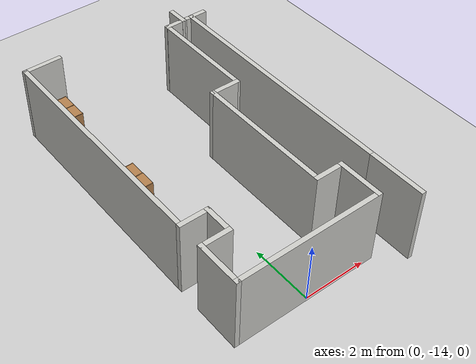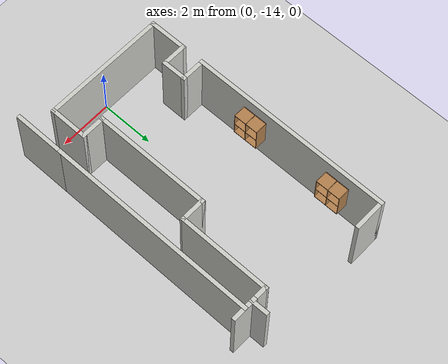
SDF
<sdf version="1.7">
 <world name="default">
  <model name="ground_plane">
   <static>1</static>
   <link name="link">
    <collision name="collision">
     <geometry><plane><normal>0 0 1</normal><size>100 100</size></plane></geometry>
     <surface>
      <contact><collide_bitmask>65535</collide_bitmask></contact>
      <friction><ode><mu>100</mu><mu2>50</mu2></ode></friction>
     </surface>
    </collision>
    <visual name="visual">
     <cast_shadows>0</cast_shadows>
     <geometry><plane><normal>0 0 1</normal><size>100 100</size></plane></geometry>
     <material>
      <script><uri>file://media/materials/scripts/gazebo.material</uri><name>Gazebo/Grey</name></script>
     </material>
    </visual>
   </link>
  </model>
  <model name="map_depo">
   <link name="Wall_29">
    <pose>-6.27021 -3.24001 0 0 0 -1.56052</pose>
    <visual name="Wall_29_Visual">
     <pose>0 0 1.25 0 -0 0</pose>
     <geometry><box><size>0.709868 0.15 2.5</size></box></geometry>
     <material>
      <script><uri>file://media/materials/scripts/gazebo.material</uri><name>Gazebo/CeilingTiled</name></script>
      <ambient>1 1 1 1</ambient>
      <shader type="pixel"/>
     </material>
     <meta><layer>0</layer></meta>
    </visual>
    <collision name="Wall_29_Collision">
     <pose>0 0 1.25 0 -0 0</pose>
     <geometry><box><size>0.709868 0.15 2.5</size></box></geometry>
     <surface>
      <friction>
       <ode><mu>1</mu><mu2>1</mu2><fdir1>0 0 0</fdir1><slip1>0</slip1><slip2>0</slip2></ode>
       <torsional>
        <coefficient>1</coefficient>
        <patch_radius>0</patch_radius>
        <surface_radius>0</surface_radius>
        <use_patch_radius>1</use_patch_radius>
        <ode><slip>0</slip></ode>
       </torsional>
      </friction>
      <bounce><restitution_coefficient>0</restitution_coefficient><threshold>1e+06</threshold></bounce>
      <contact>
       <collide_without_contact>0</collide_without_contact>
       <collide_without_contact_bitmask>1</collide_without_contact_bitmask>
       <collide_bitmask>1</collide_bitmask>
       <ode>
        <soft_cfm>0</soft_cfm>
        <soft_erp>0.2</soft_erp>
        <kp>1e+13</kp>
        <kd>1</kd>
        <max_vel>0.01</max_vel>
        <min_depth>0</min_depth>
       </ode>
       <bullet>
        <split_impulse>1</split_impulse>
        <split_impulse_penetration_threshold>-0.01</split_impulse_penetration_threshold>
        <soft_cfm>0</soft_cfm>
        <soft_erp>0.2</soft_erp>
        <kp>1e+13</kp>
        <kd>1</kd>
       </bullet>
      </contact>
     </surface>
    </collision>
   </link>
   <link name="Wall_30">
    <pose>-6.55878 -3.51973 0 0 -0 3.14159</pose>
    <visual name="Wall_30_Visual">
     <pose>0 0 1.25 0 -0 0</pose>
     <geometry><box><size>0.75 0.15 2.5</size></box></geometry>
     <material>
      <script><uri>file://media/materials/scripts/gazebo.material</uri><name>Gazebo/CeilingTiled</name></script>
      <ambient>1 1 1 1</ambient>
      <shader type="pixel"/>
     </material>
     <meta><layer>0</layer></meta>
    </visual>
    <collision name="Wall_30_Collision">
     <pose>0 0 1.25 0 -0 0</pose>
     <geometry><box><size>0.75 0.15 2.5</size></box></geometry>
     <surface>
      <friction>
       <ode><mu>1</mu><mu2>1</mu2><fdir1>0 0 0</fdir1><slip1>0</slip1><slip2>0</slip2></ode>
       <torsional>
        <coefficient>1</coefficient>
        <patch_radius>0</patch_radius>
        <surface_radius>0</surface_radius>
        <use_patch_radius>1</use_patch_radius>
        <ode><slip>0</slip></ode>
       </torsional>
      </friction>
      <bounce><restitution_coefficient>0</restitution_coefficient><threshold>1e+06</threshold></bounce>
      <contact>
       <collide_without_contact>0</collide_without_contact>
       <collide_without_contact_bitmask>1</collide_without_contact_bitmask>
       <collide_bitmask>1</collide_bitmask>
       <ode>
        <soft_cfm>0</soft_cfm>
        <soft_erp>0.2</soft_erp>
        <kp>1e+13</kp>
        <kd>1</kd>
        <max_vel>0.01</max_vel>
        <min_depth>0</min_depth>
       </ode>
       <bullet>
        <split_impulse>1</split_impulse>
        <split_impulse_penetration_threshold>-0.01</split_impulse_penetration_threshold>
        <soft_cfm>0</soft_cfm>
        <soft_erp>0.2</soft_erp>
        <kp>1e+13</kp>
        <kd>1</kd>
       </bullet>
      </contact>
     </surface>
    </collision>
   </link>
   <link name="Wall_32">
    <pose>-6.8559 -5.21486 0 0 0 -1.57249</pose>
    <visual name="Wall_32_Visual">
     <pose>0 0 1.25 0 -0 0</pose>
     <geometry><box><size>3.54027 0.15 2.5</size></box></geometry>
     <material>
      <script><uri>file://media/materials/scripts/gazebo.material</uri><name>Gazebo/CeilingTiled</name></script>
      <ambient>1 1 1 1</ambient>
      <shader type="pixel"/>
     </material>
     <meta><layer>0</layer></meta>
    </visual>
    <collision name="Wall_32_Collision">
     <pose>0 0 1.25 0 -0 0</pose>
     <geometry><box><size>3.54027 0.15 2.5</size></box></geometry>
     <surface>
      <friction>
       <ode><mu>1</mu><mu2>1</mu2><fdir1>0 0 0</fdir1><slip1>0</slip1><slip2>0</slip2></ode>
       <torsional>
        <coefficient>1</coefficient>
        <patch_radius>0</patch_radius>
        <surface_radius>0</surface_radius>
        <use_patch_radius>1</use_patch_radius>
        <ode><slip>0</slip></ode>
       </torsional>
      </friction>
      <bounce><restitution_coefficient>0</restitution_coefficient><threshold>1e+06</threshold></bounce>
      <contact>
       <collide_without_contact>0</collide_without_contact>
       <collide_without_contact_bitmask>1</collide_without_contact_bitmask>
       <collide_bitmask>1</collide_bitmask>
       <ode>
        <soft_cfm>0</soft_cfm>
        <soft_erp>0.2</soft_erp>
        <kp>1e+13</kp>
        <kd>1</kd>
        <max_vel>0.01</max_vel>
        <min_depth>0</min_depth>
       </ode>
       <bullet>
        <split_impulse>1</split_impulse>
        <split_impulse_penetration_threshold>-0.01</split_impulse_penetration_threshold>
        <soft_cfm>0</soft_cfm>
        <soft_erp>0.2</soft_erp>
        <kp>1e+13</kp>
        <kd>1</kd>
       </bullet>
      </contact>
     </surface>
    </collision>
   </link>
   <link name="Wall_35">
    <pose>-7.28378 -6.90998 0 0 -0 3.14159</pose>
    <visual name="Wall_35_Visual">
     <pose>0 0 1.25 0 -0 0</pose>
     <geometry><box><size>1 0.15 2.5</size></box></geometry>
     <material>
      <script><uri>file://media/materials/scripts/gazebo.material</uri><name>Gazebo/CeilingTiled</name></script>
      <ambient>1 1 1 1</ambient>
      <shader type="pixel"/>
     </material>
     <meta><layer>0</layer></meta>
    </visual>
    <collision name="Wall_35_Collision">
     <pose>0 0 1.25 0 -0 0</pose>
     <geometry><box><size>1 0.15 2.5</size></box></geometry>
     <surface>
      <friction>
       <ode><mu>1</mu><mu2>1</mu2><fdir1>0 0 0</fdir1><slip1>0</slip1><slip2>0</slip2></ode>
       <torsional>
        <coefficient>1</coefficient>
        <patch_radius>0</patch_radius>
        <surface_radius>0</surface_radius>
        <use_patch_radius>1</use_patch_radius>
        <ode><slip>0</slip></ode>
       </torsional>
      </friction>
      <bounce><restitution_coefficient>0</restitution_coefficient><threshold>1e+06</threshold></bounce>
      <contact>
       <collide_without_contact>0</collide_without_contact>
       <collide_without_contact_bitmask>1</collide_without_contact_bitmask>
       <collide_bitmask>1</collide_bitmask>
       <ode>
        <soft_cfm>0</soft_cfm>
        <soft_erp>0.2</soft_erp>
        <kp>1e+13</kp>
        <kd>1</kd>
        <max_vel>0.01</max_vel>
        <min_depth>0</min_depth>
       </ode>
       <bullet>
        <split_impulse>1</split_impulse>
        <split_impulse_penetration_threshold>-0.01</split_impulse_penetration_threshold>
        <soft_cfm>0</soft_cfm>
        <soft_erp>0.2</soft_erp>
        <kp>1e+13</kp>
        <kd>1</kd>
       </bullet>
      </contact>
     </surface>
    </collision>
   </link>
   <link name="Wall_36">
    <pose>-7.70878 -9.08498 0 0 0 -1.5708</pose>
    <visual name="Wall_36_Visual">
     <pose>0 0 1.25 0 -0 0</pose>
     <geometry><box><size>4.5 0.15 2.5</size></box></geometry>
     <material>
      <script><uri>file://media/materials/scripts/gazebo.material</uri><name>Gazebo/CeilingTiled</name></script>
      <ambient>1 1 1 1</ambient>
      <shader type="pixel"/>
     </material>
     <meta><layer>0</layer></meta>
    </visual>
    <collision name="Wall_36_Collision">
     <pose>0 0 1.25 0 -0 0</pose>
     <geometry><box><size>4.5 0.15 2.5</size></box></geometry>
     <surface>
      <friction>
       <ode><mu>1</mu><mu2>1</mu2><fdir1>0 0 0</fdir1><slip1>0</slip1><slip2>0</slip2></ode>
       <torsional>
        <coefficient>1</coefficient>
        <patch_radius>0</patch_radius>
        <surface_radius>0</surface_radius>
        <use_patch_radius>1</use_patch_radius>
        <ode><slip>0</slip></ode>
       </torsional>
      </friction>
      <bounce><restitution_coefficient>0</restitution_coefficient><threshold>1e+06</threshold></bounce>
      <contact>
       <collide_without_contact>0</collide_without_contact>
       <collide_without_contact_bitmask>1</collide_without_contact_bitmask>
       <collide_bitmask>1</collide_bitmask>
       <ode>
        <soft_cfm>0</soft_cfm>
        <soft_erp>0.2</soft_erp>
        <kp>1e+13</kp>
        <kd>1</kd>
        <max_vel>0.01</max_vel>
        <min_depth>0</min_depth>
       </ode>
       <bullet>
        <split_impulse>1</split_impulse>
        <split_impulse_penetration_threshold>-0.01</split_impulse_penetration_threshold>
        <soft_cfm>0</soft_cfm>
        <soft_erp>0.2</soft_erp>
        <kp>1e+13</kp>
        <kd>1</kd>
       </bullet>
      </contact>
     </surface>
    </collision>
   </link>
   <link name="Wall_39">
    <pose>-7.28378 -11.26 0 0 -0 0</pose>
    <visual name="Wall_39_Visual">
     <pose>0 0 1.25 0 -0 0</pose>
     <geometry><box><size>1 0.15 2.5</size></box></geometry>
     <material>
      <script><uri>file://media/materials/scripts/gazebo.material</uri><name>Gazebo/CeilingTiled</name></script>
      <ambient>1 1 1 1</ambient>
      <shader type="pixel"/>
     </material>
     <meta><layer>0</layer></meta>
    </visual>
    <collision name="Wall_39_Collision">
     <pose>0 0 1.25 0 -0 0</pose>
     <geometry><box><size>1 0.15 2.5</size></box></geometry>
     <surface>
      <friction>
       <ode><mu>1</mu><mu2>1</mu2><fdir1>0 0 0</fdir1><slip1>0</slip1><slip2>0</slip2></ode>
       <torsional>
        <coefficient>1</coefficient>
        <patch_radius>0</patch_radius>
        <surface_radius>0</surface_radius>
        <use_patch_radius>1</use_patch_radius>
        <ode><slip>0</slip></ode>
       </torsional>
      </friction>
      <bounce><restitution_coefficient>0</restitution_coefficient><threshold>1e+06</threshold></bounce>
      <contact>
       <collide_without_contact>0</collide_without_contact>
       <collide_without_contact_bitmask>1</collide_without_contact_bitmask>
       <collide_bitmask>1</collide_bitmask>
       <ode>
        <soft_cfm>0</soft_cfm>
        <soft_erp>0.2</soft_erp>
        <kp>1e+13</kp>
        <kd>1</kd>
        <max_vel>0.01</max_vel>
        <min_depth>0</min_depth>
       </ode>
       <bullet>
        <split_impulse>1</split_impulse>
        <split_impulse_penetration_threshold>-0.01</split_impulse_penetration_threshold>
        <soft_cfm>0</soft_cfm>
        <soft_erp>0.2</soft_erp>
        <kp>1e+13</kp>
        <kd>1</kd>
       </bullet>
      </contact>
     </surface>
    </collision>
   </link>
   <link name="Wall_40">
    <pose>-6.85878 -11.935 0 0 0 -1.5708</pose>
    <visual name="Wall_40_Visual">
     <pose>0 0 1.25 0 -0 0</pose>
     <geometry><box><size>1.5 0.15 2.5</size></box></geometry>
     <material>
      <script><uri>file://media/materials/scripts/gazebo.material</uri><name>Gazebo/CeilingTiled</name></script>
      <ambient>1 1 1 1</ambient>
      <shader type="pixel"/>
     </material>
     <meta><layer>0</layer></meta>
    </visual>
    <collision name="Wall_40_Collision">
     <pose>0 0 1.25 0 -0 0</pose>
     <geometry><box><size>1.5 0.15 2.5</size></box></geometry>
     <surface>
      <friction>
       <ode><mu>1</mu><mu2>1</mu2><fdir1>0 0 0</fdir1><slip1>0</slip1><slip2>0</slip2></ode>
       <torsional>
        <coefficient>1</coefficient>
        <patch_radius>0</patch_radius>
        <surface_radius>0</surface_radius>
        <use_patch_radius>1</use_patch_radius>
        <ode><slip>0</slip></ode>
       </torsional>
      </friction>
      <bounce><restitution_coefficient>0</restitution_coefficient><threshold>1e+06</threshold></bounce>
      <contact>
       <collide_without_contact>0</collide_without_contact>
       <collide_without_contact_bitmask>1</collide_without_contact_bitmask>
       <collide_bitmask>1</collide_bitmask>
       <ode>
        <soft_cfm>0</soft_cfm>
        <soft_erp>0.2</soft_erp>
        <kp>1e+13</kp>
        <kd>1</kd>
        <max_vel>0.01</max_vel>
        <min_depth>0</min_depth>
       </ode>
       <bullet>
        <split_impulse>1</split_impulse>
        <split_impulse_penetration_threshold>-0.01</split_impulse_penetration_threshold>
        <soft_cfm>0</soft_cfm>
        <soft_erp>0.2</soft_erp>
        <kp>1e+13</kp>
        <kd>1</kd>
       </bullet>
      </contact>
     </surface>
    </collision>
   </link>
   <link name="Wall_41">
    <pose>-9.15878 -12.61 0 0 -0 3.14159</pose>
    <visual name="Wall_41_Visual">
     <pose>0 0 1.25 0 -0 0</pose>
     <geometry><box><size>4.75 0.15 2.5</size></box></geometry>
     <material>
      <script><uri>file://media/materials/scripts/gazebo.material</uri><name>Gazebo/CeilingTiled</name></script>
      <ambient>1 1 1 1</ambient>
      <shader type="pixel"/>
     </material>
     <meta><layer>0</layer></meta>
    </visual>
    <collision name="Wall_41_Collision">
     <pose>0 0 1.25 0 -0 0</pose>
     <geometry><box><size>4.75 0.15 2.5</size></box></geometry>
     <surface>
      <friction>
       <ode><mu>1</mu><mu2>1</mu2><fdir1>0 0 0</fdir1><slip1>0</slip1><slip2>0</slip2></ode>
       <torsional>
        <coefficient>1</coefficient>
        <patch_radius>0</patch_radius>
        <surface_radius>0</surface_radius>
        <use_patch_radius>1</use_patch_radius>
        <ode><slip>0</slip></ode>
       </torsional>
      </friction>
      <bounce><restitution_coefficient>0</restitution_coefficient><threshold>1e+06</threshold></bounce>
      <contact>
       <collide_without_contact>0</collide_without_contact>
       <collide_without_contact_bitmask>1</collide_without_contact_bitmask>
       <collide_bitmask>1</collide_bitmask>
       <ode>
        <soft_cfm>0</soft_cfm>
        <soft_erp>0.2</soft_erp>
        <kp>1e+13</kp>
        <kd>1</kd>
        <max_vel>0.01</max_vel>
        <min_depth>0</min_depth>
       </ode>
       <bullet>
        <split_impulse>1</split_impulse>
        <split_impulse_penetration_threshold>-0.01</split_impulse_penetration_threshold>
        <soft_cfm>0</soft_cfm>
        <soft_erp>0.2</soft_erp>
        <kp>1e+13</kp>
        <kd>1</kd>
       </bullet>
      </contact>
     </surface>
    </collision>
   </link>
   <link name="Wall_42">
    <pose>-11.4588 -11.935 0 0 -0 1.5708</pose>
    <visual name="Wall_42_Visual">
     <pose>0 0 1.25 0 -0 0</pose>
     <geometry><box><size>1.5 0.15 2.5</size></box></geometry>
     <material>
      <script><uri>file://media/materials/scripts/gazebo.material</uri><name>Gazebo/CeilingTiled</name></script>
      <ambient>1 1 1 1</ambient>
      <shader type="pixel"/>
     </material>
     <meta><layer>0</layer></meta>
    </visual>
    <collision name="Wall_42_Collision">
     <pose>0 0 1.25 0 -0 0</pose>
     <geometry><box><size>1.5 0.15 2.5</size></box></geometry>
     <surface>
      <friction>
       <ode><mu>1</mu><mu2>1</mu2><fdir1>0 0 0</fdir1><slip1>0</slip1><slip2>0</slip2></ode>
       <torsional>
        <coefficient>1</coefficient>
        <patch_radius>0</patch_radius>
        <surface_radius>0</surface_radius>
        <use_patch_radius>1</use_patch_radius>
        <ode><slip>0</slip></ode>
       </torsional>
      </friction>
      <bounce><restitution_coefficient>0</restitution_coefficient><threshold>1e+06</threshold></bounce>
      <contact>
       <collide_without_contact>0</collide_without_contact>
       <collide_without_contact_bitmask>1</collide_without_contact_bitmask>
       <collide_bitmask>1</collide_bitmask>
       <ode>
        <soft_cfm>0</soft_cfm>
        <soft_erp>0.2</soft_erp>
        <kp>1e+13</kp>
        <kd>1</kd>
        <max_vel>0.01</max_vel>
        <min_depth>0</min_depth>
       </ode>
       <bullet>
        <split_impulse>1</split_impulse>
        <split_impulse_penetration_threshold>-0.01</split_impulse_penetration_threshold>
        <soft_cfm>0</soft_cfm>
        <soft_erp>0.2</soft_erp>
        <kp>1e+13</kp>
        <kd>1</kd>
       </bullet>
      </contact>
     </surface>
    </collision>
   </link>
   <link name="Wall_43">
    <pose>-11.0338 -11.26 0 0 -0 0</pose>
    <visual name="Wall_43_Visual">
     <pose>0 0 1.25 0 -0 0</pose>
     <geometry><box><size>1 0.15 2.5</size></box></geometry>
     <material>
      <script><uri>file://media/materials/scripts/gazebo.material</uri><name>Gazebo/CeilingTiled</name></script>
      <ambient>1 1 1 1</ambient>
      <shader type="pixel"/>
     </material>
     <meta><layer>0</layer></meta>
    </visual>
    <collision name="Wall_43_Collision">
     <pose>0 0 1.25 0 -0 0</pose>
     <geometry><box><size>1 0.15 2.5</size></box></geometry>
     <surface>
      <friction>
       <ode><mu>1</mu><mu2>1</mu2><fdir1>0 0 0</fdir1><slip1>0</slip1><slip2>0</slip2></ode>
       <torsional>
        <coefficient>1</coefficient>
        <patch_radius>0</patch_radius>
        <surface_radius>0</surface_radius>
        <use_patch_radius>1</use_patch_radius>
        <ode><slip>0</slip></ode>
       </torsional>
      </friction>
      <bounce><restitution_coefficient>0</restitution_coefficient><threshold>1e+06</threshold></bounce>
      <contact>
       <collide_without_contact>0</collide_without_contact>
       <collide_without_contact_bitmask>1</collide_without_contact_bitmask>
       <collide_bitmask>1</collide_bitmask>
       <ode>
        <soft_cfm>0</soft_cfm>
        <soft_erp>0.2</soft_erp>
        <kp>1e+13</kp>
        <kd>1</kd>
        <max_vel>0.01</max_vel>
        <min_depth>0</min_depth>
       </ode>
       <bullet>
        <split_impulse>1</split_impulse>
        <split_impulse_penetration_threshold>-0.01</split_impulse_penetration_threshold>
        <soft_cfm>0</soft_cfm>
        <soft_erp>0.2</soft_erp>
        <kp>1e+13</kp>
        <kd>1</kd>
       </bullet>
      </contact>
     </surface>
    </collision>
   </link>
   <link name="Wall_44">
    <pose>-10.6088 -10.835 0 0 -0 1.5708</pose>
    <visual name="Wall_44_Visual">
     <pose>0 0 1.25 0 -0 0</pose>
     <geometry><box><size>1 0.15 2.5</size></box></geometry>
     <material>
      <script><uri>file://media/materials/scripts/gazebo.material</uri><name>Gazebo/CeilingTiled</name></script>
      <ambient>1 1 1 1</ambient>
      <shader type="pixel"/>
     </material>
     <meta><layer>0</layer></meta>
    </visual>
    <collision name="Wall_44_Collision">
     <pose>0 0 1.25 0 -0 0</pose>
     <geometry><box><size>1 0.15 2.5</size></box></geometry>
     <surface>
      <friction>
       <ode><mu>1</mu><mu2>1</mu2><fdir1>0 0 0</fdir1><slip1>0</slip1><slip2>0</slip2></ode>
       <torsional>
        <coefficient>1</coefficient>
        <patch_radius>0</patch_radius>
        <surface_radius>0</surface_radius>
        <use_patch_radius>1</use_patch_radius>
        <ode><slip>0</slip></ode>
       </torsional>
      </friction>
      <bounce><restitution_coefficient>0</restitution_coefficient><threshold>1e+06</threshold></bounce>
      <contact>
       <collide_without_contact>0</collide_without_contact>
       <collide_without_contact_bitmask>1</collide_without_contact_bitmask>
       <collide_bitmask>1</collide_bitmask>
       <ode>
        <soft_cfm>0</soft_cfm>
        <soft_erp>0.2</soft_erp>
        <kp>1e+13</kp>
        <kd>1</kd>
        <max_vel>0.01</max_vel>
        <min_depth>0</min_depth>
       </ode>
       <bullet>
        <split_impulse>1</split_impulse>
        <split_impulse_penetration_threshold>-0.01</split_impulse_penetration_threshold>
        <soft_cfm>0</soft_cfm>
        <soft_erp>0.2</soft_erp>
        <kp>1e+13</kp>
        <kd>1</kd>
       </bullet>
      </contact>
     </surface>
    </collision>
   </link>
   <link name="Wall_45">
    <pose>-11.0338 -10.41 0 0 -0 3.14159</pose>
    <visual name="Wall_45_Visual">
     <pose>0 0 1.25 0 -0 0</pose>
     <geometry><box><size>1 0.15 2.5</size></box></geometry>
     <material>
      <script><uri>file://media/materials/scripts/gazebo.material</uri><name>Gazebo/CeilingTiled</name></script>
      <ambient>1 1 1 1</ambient>
      <shader type="pixel"/>
     </material>
     <meta><layer>0</layer></meta>
    </visual>
    <collision name="Wall_45_Collision">
     <pose>0 0 1.25 0 -0 0</pose>
     <geometry><box><size>1 0.15 2.5</size></box></geometry>
     <surface>
      <friction>
       <ode><mu>1</mu><mu2>1</mu2><fdir1>0 0 0</fdir1><slip1>0</slip1><slip2>0</slip2></ode>
       <torsional>
        <coefficient>1</coefficient>
        <patch_radius>0</patch_radius>
        <surface_radius>0</surface_radius>
        <use_patch_radius>1</use_patch_radius>
        <ode><slip>0</slip></ode>
       </torsional>
      </friction>
      <bounce><restitution_coefficient>0</restitution_coefficient><threshold>1e+06</threshold></bounce>
      <contact>
       <collide_without_contact>0</collide_without_contact>
       <collide_without_contact_bitmask>1</collide_without_contact_bitmask>
       <collide_bitmask>1</collide_bitmask>
       <ode>
        <soft_cfm>0</soft_cfm>
        <soft_erp>0.2</soft_erp>
        <kp>1e+13</kp>
        <kd>1</kd>
        <max_vel>0.01</max_vel>
        <min_depth>0</min_depth>
       </ode>
       <bullet>
        <split_impulse>1</split_impulse>
        <split_impulse_penetration_threshold>-0.01</split_impulse_penetration_threshold>
        <soft_cfm>0</soft_cfm>
        <soft_erp>0.2</soft_erp>
        <kp>1e+13</kp>
        <kd>1</kd>
       </bullet>
      </contact>
     </surface>
    </collision>
   </link>
   <link name="Wall_46">
    <pose>-11.4588 -6.60998 0 0 -0 1.5708</pose>
    <visual name="Wall_46_Visual">
     <pose>0 0 1.25 0 -0 0</pose>
     <geometry><box><size>7.75 0.15 2.5</size></box></geometry>
     <material>
      <script><uri>file://media/materials/scripts/gazebo.material</uri><name>Gazebo/CeilingTiled</name></script>
      <ambient>1 1 1 1</ambient>
      <shader type="pixel"/>
     </material>
     <meta><layer>0</layer></meta>
    </visual>
    <collision name="Wall_46_Collision">
     <pose>0 0 1.25 0 -0 0</pose>
     <geometry><box><size>7.75 0.15 2.5</size></box></geometry>
     <surface>
      <friction>
       <ode><mu>1</mu><mu2>1</mu2><fdir1>0 0 0</fdir1><slip1>0</slip1><slip2>0</slip2></ode>
       <torsional>
        <coefficient>1</coefficient>
        <patch_radius>0</patch_radius>
        <surface_radius>0</surface_radius>
        <use_patch_radius>1</use_patch_radius>
        <ode><slip>0</slip></ode>
       </torsional>
      </friction>
      <bounce><restitution_coefficient>0</restitution_coefficient><threshold>1e+06</threshold></bounce>
      <contact>
       <collide_without_contact>0</collide_without_contact>
       <collide_without_contact_bitmask>1</collide_without_contact_bitmask>
       <collide_bitmask>1</collide_bitmask>
       <ode>
        <soft_cfm>0</soft_cfm>
        <soft_erp>0.2</soft_erp>
        <kp>1e+13</kp>
        <kd>1</kd>
        <max_vel>0.01</max_vel>
        <min_depth>0</min_depth>
       </ode>
       <bullet>
        <split_impulse>1</split_impulse>
        <split_impulse_penetration_threshold>-0.01</split_impulse_penetration_threshold>
        <soft_cfm>0</soft_cfm>
        <soft_erp>0.2</soft_erp>
        <kp>1e+13</kp>
        <kd>1</kd>
       </bullet>
      </contact>
     </surface>
    </collision>
   </link>
   <link name="Wall_48">
    <pose>-11.4588 -2.80998 0 0 -0 0</pose>
    <visual name="Wall_48_Visual">
     <pose>0 0 1.25 0 -0 0</pose>
     <geometry><box><size>0.15 0.15 2.5</size></box></geometry>
     <material>
      <script><uri>file://media/materials/scripts/gazebo.material</uri><name>Gazebo/Grey</name></script>
      <ambient>1 1 1 1</ambient>
      <shader type="pixel"/>
     </material>
     <meta><layer>0</layer></meta>
    </visual>
    <collision name="Wall_48_Collision">
     <pose>0 0 1.25 0 -0 0</pose>
     <geometry><box><size>0.15 0.15 2.5</size></box></geometry>
     <surface>
      <friction>
       <ode><mu>1</mu><mu2>1</mu2><fdir1>0 0 0</fdir1><slip1>0</slip1><slip2>0</slip2></ode>
       <torsional>
        <coefficient>1</coefficient>
        <patch_radius>0</patch_radius>
        <surface_radius>0</surface_radius>
        <use_patch_radius>1</use_patch_radius>
        <ode><slip>0</slip></ode>
       </torsional>
      </friction>
      <bounce><restitution_coefficient>0</restitution_coefficient><threshold>1e+06</threshold></bounce>
      <contact>
       <collide_without_contact>0</collide_without_contact>
       <collide_without_contact_bitmask>1</collide_without_contact_bitmask>
       <collide_bitmask>1</collide_bitmask>
       <ode>
        <soft_cfm>0</soft_cfm>
        <soft_erp>0.2</soft_erp>
        <kp>1e+13</kp>
        <kd>1</kd>
        <max_vel>0.01</max_vel>
        <min_depth>0</min_depth>
       </ode>
       <bullet>
        <split_impulse>1</split_impulse>
        <split_impulse_penetration_threshold>-0.01</split_impulse_penetration_threshold>
        <soft_cfm>0</soft_cfm>
        <soft_erp>0.2</soft_erp>
        <kp>1e+13</kp>
        <kd>1</kd>
       </bullet>
      </contact>
     </surface>
    </collision>
   </link>
   <link name="Wall_49">
    <pose>-10.903 -2.80998 0 0 -0 0</pose>
    <visual name="Wall_49_Visual">
     <pose>0 0 1.25 0 -0 0</pose>
     <geometry><box><size>1.26245 0.15 2.5</size></box></geometry>
     <material>
      <script><uri>file://media/materials/scripts/gazebo.material</uri><name>Gazebo/CeilingTiled</name></script>
      <ambient>1 1 1 1</ambient>
      <shader type="pixel"/>
     </material>
     <meta><layer>0</layer></meta>
    </visual>
    <collision name="Wall_49_Collision">
     <pose>0 0 1.25 0 -0 0</pose>
     <geometry><box><size>1.26245 0.15 2.5</size></box></geometry>
     <surface>
      <friction>
       <ode><mu>1</mu><mu2>1</mu2><fdir1>0 0 0</fdir1><slip1>0</slip1><slip2>0</slip2></ode>
       <torsional>
        <coefficient>1</coefficient>
        <patch_radius>0</patch_radius>
        <surface_radius>0</surface_radius>
        <use_patch_radius>1</use_patch_radius>
        <ode><slip>0</slip></ode>
       </torsional>
      </friction>
      <bounce><restitution_coefficient>0</restitution_coefficient><threshold>1e+06</threshold></bounce>
      <contact>
       <collide_without_contact>0</collide_without_contact>
       <collide_without_contact_bitmask>1</collide_without_contact_bitmask>
       <collide_bitmask>1</collide_bitmask>
       <ode>
        <soft_cfm>0</soft_cfm>
        <soft_erp>0.2</soft_erp>
        <kp>1e+13</kp>
        <kd>1</kd>
        <max_vel>0.01</max_vel>
        <min_depth>0</min_depth>
       </ode>
       <bullet>
        <split_impulse>1</split_impulse>
        <split_impulse_penetration_threshold>-0.01</split_impulse_penetration_threshold>
        <soft_cfm>0</soft_cfm>
        <soft_erp>0.2</soft_erp>
        <kp>1e+13</kp>
        <kd>1</kd>
       </bullet>
      </contact>
     </surface>
    </collision>
   </link>
   <link name="Wall_65">
    <pose>-5.92378 -3.51973 0 0 -0 0</pose>
    <inertial>
     <mass>1</mass>
     <inertia><ixx>1</ixx><ixy>0</ixy><ixz>0</ixz><iyy>1</iyy><iyz>0</iyz><izz>1</izz></inertia>
    </inertial>
    <visual name="Wall_65_Visual">
     <pose>0 0 1.25 0 -0 0</pose>
     <geometry><box><size>1 0.15 2.5</size></box></geometry>
     <material>
      <script><uri>file://media/materials/scripts/gazebo.material</uri><name>Gazebo/CeilingTiled</name></script>
      <ambient>1 1 1 1</ambient>
      <shader type="pixel"><normal_map>__default__</normal_map></shader>
      <diffuse>1 1 1 1</diffuse>
      <specular>0 0 0 1</specular>
      <emissive>0 0 0 1</emissive>
     </material>
     <meta><layer>0</layer></meta>
    </visual>
    <collision name="Wall_65_Collision">
     <pose>0 0 1.25 0 -0 0</pose>
     <geometry><box><size>1 0.15 2.5</size></box></geometry>
     <surface>
      <friction>
       <ode><mu>1</mu><mu2>1</mu2><fdir1>0 0 0</fdir1><slip1>0</slip1><slip2>0</slip2></ode>
       <torsional>
        <coefficient>1</coefficient>
        <patch_radius>0</patch_radius>
        <surface_radius>0</surface_radius>
        <use_patch_radius>1</use_patch_radius>
        <ode><slip>0</slip></ode>
       </torsional>
      </friction>
      <bounce><restitution_coefficient>0</restitution_coefficient><threshold>1e+06</threshold></bounce>
      <contact>
       <collide_without_contact>0</collide_without_contact>
       <collide_without_contact_bitmask>1</collide_without_contact_bitmask>
       <collide_bitmask>1</collide_bitmask>
       <ode>
        <soft_cfm>0</soft_cfm>
        <soft_erp>0.2</soft_erp>
        <kp>1e+13</kp>
        <kd>1</kd>
        <max_vel>0.01</max_vel>
        <min_depth>0</min_depth>
       </ode>
       <bullet>
        <split_impulse>1</split_impulse>
        <split_impulse_penetration_threshold>-0.01</split_impulse_penetration_threshold>
        <soft_cfm>0</soft_cfm>
        <soft_erp>0.2</soft_erp>
        <kp>1e+13</kp>
        <kd>1</kd>
       </bullet>
      </contact>
     </surface>
    </collision>
   </link>
   <link name="Wall_68">
    <pose>-5.95009 -7.45997 0 0 0 -1.5708</pose>
    <visual name="Wall_68_Visual">
     <pose>0 0 1.25 0 -0 0</pose>
     <geometry><box><size>8 0.15 2.5</size></box></geometry>
     <material>
      <script><uri>file://media/materials/scripts/gazebo.material</uri><name>Gazebo/CeilingTiled</name></script>
      <ambient>1 1 1 1</ambient>
      <shader type="pixel"/>
     </material>
     <meta><layer>0</layer></meta>
    </visual>
    <collision name="Wall_68_Collision">
     <pose>0 0 1.25 0 -0 0</pose>
     <geometry><box><size>8 0.15 2.5</size></box></geometry>
     <surface>
      <friction>
       <ode><mu>1</mu><mu2>1</mu2><fdir1>0 0 0</fdir1><slip1>0</slip1><slip2>0</slip2></ode>
       <torsional>
        <coefficient>1</coefficient>
        <patch_radius>0</patch_radius>
        <surface_radius>0</surface_radius>
        <use_patch_radius>1</use_patch_radius>
        <ode><slip>0</slip></ode>
       </torsional>
      </friction>
      <bounce><restitution_coefficient>0</restitution_coefficient><threshold>1e+06</threshold></bounce>
      <contact>
       <collide_without_contact>0</collide_without_contact>
       <collide_without_contact_bitmask>1</collide_without_contact_bitmask>
       <collide_bitmask>1</collide_bitmask>
       <ode>
        <soft_cfm>0</soft_cfm>
        <soft_erp>0.2</soft_erp>
        <kp>1e+13</kp>
        <kd>1</kd>
        <max_vel>0.01</max_vel>
        <min_depth>0</min_depth>
       </ode>
       <bullet>
        <split_impulse>1</split_impulse>
        <split_impulse_penetration_threshold>-0.01</split_impulse_penetration_threshold>
        <soft_cfm>0</soft_cfm>
        <soft_erp>0.2</soft_erp>
        <kp>1e+13</kp>
        <kd>1</kd>
       </bullet>
      </contact>
     </surface>
    </collision>
   </link>
   <link name="Wall_70">
    <pose>-5.95009 -12.31 0 0 0 -1.5708</pose>
    <visual name="Wall_70_Visual">
     <pose>0 0 1.25 0 -0 0</pose>
     <geometry><box><size>2 0.15 2.5</size></box></geometry>
     <material>
      <script><uri>file://media/materials/scripts/gazebo.material</uri><name>Gazebo/CeilingTiled</name></script>
      <ambient>1 1 1 1</ambient>
      <shader type="pixel"/>
     </material>
     <meta><layer>0</layer></meta>
    </visual>
    <collision name="Wall_70_Collision">
     <pose>0 0 1.25 0 -0 0</pose>
     <geometry><box><size>2 0.15 2.5</size></box></geometry>
     <surface>
      <friction>
       <ode><mu>1</mu><mu2>1</mu2><fdir1>0 0 0</fdir1><slip1>0</slip1><slip2>0</slip2></ode>
       <torsional>
        <coefficient>1</coefficient>
        <patch_radius>0</patch_radius>
        <surface_radius>0</surface_radius>
        <use_patch_radius>1</use_patch_radius>
        <ode><slip>0</slip></ode>
       </torsional>
      </friction>
      <bounce><restitution_coefficient>0</restitution_coefficient><threshold>1e+06</threshold></bounce>
      <contact>
       <collide_without_contact>0</collide_without_contact>
       <collide_without_contact_bitmask>1</collide_without_contact_bitmask>
       <collide_bitmask>1</collide_bitmask>
       <ode>
        <soft_cfm>0</soft_cfm>
        <soft_erp>0.2</soft_erp>
        <kp>1e+13</kp>
        <kd>1</kd>
        <max_vel>0.01</max_vel>
        <min_depth>0</min_depth>
       </ode>
       <bullet>
        <split_impulse>1</split_impulse>
        <split_impulse_penetration_threshold>-0.01</split_impulse_penetration_threshold>
        <soft_cfm>0</soft_cfm>
        <soft_erp>0.2</soft_erp>
        <kp>1e+13</kp>
        <kd>1</kd>
       </bullet>
      </contact>
     </surface>
    </collision>
   </link>
   <static>1</static>
   <pose>9.09356 -1.35985 0 0 -0 0</pose>
  </model>
  <model name="cabinet">
   <static>1</static>
   <link name="cabinet_bottom_plate">
    <inertial>
     <pose>0 0 -1 0 -0 0</pose>
     <inertia><ixx>2.05</ixx><ixy>0</ixy><ixz>0</ixz><iyy>2.05</iyy><iyz>0</iyz><izz>2.05</izz></inertia>
     <mass>25</mass>
    </inertial>
    <collision name="cabinet_bottom_plate_geom">
     <pose>0 0 0.01 0 -0 0</pose>
     <geometry><box><size>0.45 0.45 0.02</size></box></geometry>
    </collision>
    <visual name="cabinet_bottom_plate_geom_visual">
     <pose>0 0 0.01 0 -0 0</pose>
     <geometry><box><size>0.45 0.45 0.02</size></box></geometry>
     <material>
      <script><uri>file://media/materials/scripts/gazebo.material</uri><name>Gazebo/Wood</name></script>
     </material>
    </visual>
    <collision name="cabinet_bottom_plate_geom_cabinet_back_plate">
     <pose>0.235 0 0.51 0 -0 0</pose>
     <geometry><box><size>0.02 0.45 1.02</size></box></geometry>
    </collision>
    <visual name="cabinet_bottom_plate_geom_cabinet_back_plate_visual">
     <pose>0.235 0 0.51 0 -0 0</pose>
     <geometry><box><size>0.02 0.45 1.02</size></box></geometry>
     <material>
      <script><uri>file://media/materials/scripts/gazebo.material</uri><name>Gazebo/Wood</name></script>
     </material>
    </visual>
    <collision name="cabinet_bottom_plate_geom_cabinet_left_plate">
     <pose>0 0.235 0.51 0 -0 0</pose>
     <geometry><box><size>0.45 0.02 1.02</size></box></geometry>
    </collision>
    <visual name="cabinet_bottom_plate_geom_cabinet_left_plate_visual">
     <pose>0 0.235 0.51 0 -0 0</pose>
     <geometry><box><size>0.45 0.02 1.02</size></box></geometry>
     <material>
      <script><uri>file://media/materials/scripts/gazebo.material</uri><name>Gazebo/Wood</name></script>
     </material>
    </visual>
    <collision name="cabinet_bottom_plate_geom_cabinet_middle_plate">
     <pose>0 0 0.51 0 -0 0</pose>
     <geometry><box><size>0.45 0.45 0.02</size></box></geometry>
    </collision>
    <visual name="cabinet_bottom_plate_geom_cabinet_middle_plate_visual">
     <pose>0 0 0.51 0 -0 0</pose>
     <geometry><box><size>0.45 0.45 0.02</size></box></geometry>
     <material>
      <script><uri>file://media/materials/scripts/gazebo.material</uri><name>Gazebo/Wood</name></script>
     </material>
    </visual>
    <collision name="cabinet_bottom_plate_geom_cabinet_right_plate">
     <pose>0 -0.235 0.51 0 -0 0</pose>
     <geometry><box><size>0.45 0.02 1.02</size></box></geometry>
    </collision>
    <visual name="cabinet_bottom_plate_geom_cabinet_right_plate_visual">
     <pose>0 -0.235 0.51 0 -0 0</pose>
     <geometry><box><size>0.45 0.02 1.02</size></box></geometry>
     <material>
      <script><uri>file://media/materials/scripts/gazebo.material</uri><name>Gazebo/Wood</name></script>
     </material>
    </visual>
    <collision name="cabinet_bottom_plate_geom_cabinet_top_plate">
     <pose>0 0 1.01 0 -0 0</pose>
     <geometry><box><size>0.45 0.45 0.02</size></box></geometry>
    </collision>
    <visual name="cabinet_bottom_plate_geom_cabinet_top_plate_visual">
     <pose>0 0 1.01 0 -0 0</pose>
     <geometry><box><size>0.45 0.45 0.02</size></box></geometry>
     <material>
      <script><uri>file://media/materials/scripts/gazebo.material</uri><name>Gazebo/Wood</name></script>
     </material>
    </visual>
   </link>
   <pose>-1.99578 -5.56927 1.00492 0 -0 -3.13993</pose>
  </model>
  <model name="cabinet_clone">
   <static>1</static>
   <link name="cabinet_bottom_plate">
    <inertial>
     <pose>0 0 -1 0 -0 0</pose>
     <inertia><ixx>2.05</ixx><ixy>0</ixy><ixz>0</ixz><iyy>2.05</iyy><iyz>0</iyz><izz>2.05</izz></inertia>
     <mass>25</mass>
    </inertial>
    <collision name="cabinet_bottom_plate_geom">
     <pose>0 0 0.01 0 -0 0</pose>
     <geometry><box><size>0.45 0.45 0.02</size></box></geometry>
    </collision>
    <visual name="cabinet_bottom_plate_geom_visual">
     <pose>0 0 0.01 0 -0 0</pose>
     <geometry><box><size>0.45 0.45 0.02</size></box></geometry>
     <material>
      <script><uri>file://media/materials/scripts/gazebo.material</uri><name>Gazebo/Wood</name></script>
     </material>
    </visual>
    <collision name="cabinet_bottom_plate_geom_cabinet_back_plate">
     <pose>0.235 0 0.51 0 -0 0</pose>
     <geometry><box><size>0.02 0.45 1.02</size></box></geometry>
    </collision>
    <visual name="cabinet_bottom_plate_geom_cabinet_back_plate_visual">
     <pose>0.235 0 0.51 0 -0 0</pose>
     <geometry><box><size>0.02 0.45 1.02</size></box></geometry>
     <material>
      <script><uri>file://media/materials/scripts/gazebo.material</uri><name>Gazebo/Wood</name></script>
     </material>
    </visual>
    <collision name="cabinet_bottom_plate_geom_cabinet_left_plate">
     <pose>0 0.235 0.51 0 -0 0</pose>
     <geometry><box><size>0.45 0.02 1.02</size></box></geometry>
    </collision>
    <visual name="cabinet_bottom_plate_geom_cabinet_left_plate_visual">
     <pose>0 0.235 0.51 0 -0 0</pose>
     <geometry><box><size>0.45 0.02 1.02</size></box></geometry>
     <material>
      <script><uri>file://media/materials/scripts/gazebo.material</uri><name>Gazebo/Wood</name></script>
     </material>
    </visual>
    <collision name="cabinet_bottom_plate_geom_cabinet_middle_plate">
     <pose>0 0 0.51 0 -0 0</pose>
     <geometry><box><size>0.45 0.45 0.02</size></box></geometry>
    </collision>
    <visual name="cabinet_bottom_plate_geom_cabinet_middle_plate_visual">
     <pose>0 0 0.51 0 -0 0</pose>
     <geometry><box><size>0.45 0.45 0.02</size></box></geometry>
     <material>
      <script><uri>file://media/materials/scripts/gazebo.material</uri><name>Gazebo/Wood</name></script>
     </material>
    </visual>
    <collision name="cabinet_bottom_plate_geom_cabinet_right_plate">
     <pose>0 -0.235 0.51 0 -0 0</pose>
     <geometry><box><size>0.45 0.02 1.02</size></box></geometry>
    </collision>
    <visual name="cabinet_bottom_plate_geom_cabinet_right_plate_visual">
     <pose>0 -0.235 0.51 0 -0 0</pose>
     <geometry><box><size>0.45 0.02 1.02</size></box></geometry>
     <material>
      <script><uri>file://media/materials/scripts/gazebo.material</uri><name>Gazebo/Wood</name></script>
     </material>
    </visual>
    <collision name="cabinet_bottom_plate_geom_cabinet_top_plate">
     <pose>0 0 1.01 0 -0 0</pose>
     <geometry><box><size>0.45 0.45 0.02</size></box></geometry>
    </collision>
    <visual name="cabinet_bottom_plate_geom_cabinet_top_plate_visual">
     <pose>0 0 1.01 0 -0 0</pose>
     <geometry><box><size>0.45 0.45 0.02</size></box></geometry>
     <material>
      <script><uri>file://media/materials/scripts/gazebo.material</uri><name>Gazebo/Wood</name></script>
     </material>
    </visual>
   </link>
   <pose>-1.99789 -6.04174 1.00492 0 0 -3.13993</pose>
  </model>
  <model name="cabinet_clone_0">
   <static>1</static>
   <link name="cabinet_bottom_plate">
    <inertial>
     <pose>0 0 -1 0 -0 0</pose>
     <inertia><ixx>2.05</ixx><ixy>0</ixy><ixz>0</ixz><iyy>2.05</iyy><iyz>0</iyz><izz>2.05</izz></inertia>
     <mass>25</mass>
    </inertial>
    <collision name="cabinet_bottom_plate_geom">
     <pose>0 0 0.01 0 -0 0</pose>
     <geometry><box><size>0.45 0.45 0.02</size></box></geometry>
    </collision>
    <visual name="cabinet_bottom_plate_geom_visual">
     <pose>0 0 0.01 0 -0 0</pose>
     <geometry><box><size>0.45 0.45 0.02</size></box></geometry>
     <material>
      <script><uri>file://media/materials/scripts/gazebo.material</uri><name>Gazebo/Wood</name></script>
     </material>
    </visual>
    <collision name="cabinet_bottom_plate_geom_cabinet_back_plate">
     <pose>0.235 0 0.51 0 -0 0</pose>
     <geometry><box><size>0.02 0.45 1.02</size></box></geometry>
    </collision>
    <visual name="cabinet_bottom_plate_geom_cabinet_back_plate_visual">
     <pose>0.235 0 0.51 0 -0 0</pose>
     <geometry><box><size>0.02 0.45 1.02</size></box></geometry>
     <material>
      <script><uri>file://media/materials/scripts/gazebo.material</uri><name>Gazebo/Wood</name></script>
     </material>
    </visual>
    <collision name="cabinet_bottom_plate_geom_cabinet_left_plate">
     <pose>0 0.235 0.51 0 -0 0</pose>
     <geometry><box><size>0.45 0.02 1.02</size></box></geometry>
    </collision>
    <visual name="cabinet_bottom_plate_geom_cabinet_left_plate_visual">
     <pose>0 0.235 0.51 0 -0 0</pose>
     <geometry><box><size>0.45 0.02 1.02</size></box></geometry>
     <material>
      <script><uri>file://media/materials/scripts/gazebo.material</uri><name>Gazebo/Wood</name></script>
     </material>
    </visual>
    <collision name="cabinet_bottom_plate_geom_cabinet_middle_plate">
     <pose>0 0 0.51 0 -0 0</pose>
     <geometry><box><size>0.45 0.45 0.02</size></box></geometry>
    </collision>
    <visual name="cabinet_bottom_plate_geom_cabinet_middle_plate_visual">
     <pose>0 0 0.51 0 -0 0</pose>
     <geometry><box><size>0.45 0.45 0.02</size></box></geometry>
     <material>
      <script><uri>file://media/materials/scripts/gazebo.material</uri><name>Gazebo/Wood</name></script>
     </material>
    </visual>
    <collision name="cabinet_bottom_plate_geom_cabinet_right_plate">
     <pose>0 -0.235 0.51 0 -0 0</pose>
     <geometry><box><size>0.45 0.02 1.02</size></box></geometry>
    </collision>
    <visual name="cabinet_bottom_plate_geom_cabinet_right_plate_visual">
     <pose>0 -0.235 0.51 0 -0 0</pose>
     <geometry><box><size>0.45 0.02 1.02</size></box></geometry>
     <material>
      <script><uri>file://media/materials/scripts/gazebo.material</uri><name>Gazebo/Wood</name></script>
     </material>
    </visual>
    <collision name="cabinet_bottom_plate_geom_cabinet_top_plate">
     <pose>0 0 1.01 0 -0 0</pose>
     <geometry><box><size>0.45 0.45 0.02</size></box></geometry>
    </collision>
    <visual name="cabinet_bottom_plate_geom_cabinet_top_plate_visual">
     <pose>0 0 1.01 0 -0 0</pose>
     <geometry><box><size>0.45 0.45 0.02</size></box></geometry>
     <material>
      <script><uri>file://media/materials/scripts/gazebo.material</uri><name>Gazebo/Wood</name></script>
     </material>
    </visual>
   </link>
   <pose>-2.02654 -9.07729 1.00492 0 0 -3.13993</pose>
  </model>
  <model name="cabinet_clone_1">
   <static>1</static>
   <link name="cabinet_bottom_plate">
    <inertial>
     <pose>0 0 -1 0 -0 0</pose>
     <inertia><ixx>2.05</ixx><ixy>0</ixy><ixz>0</ixz><iyy>2.05</iyy><iyz>0</iyz><izz>2.05</izz></inertia>
     <mass>25</mass>
    </inertial>
    <collision name="cabinet_bottom_plate_geom">
     <pose>0 0 0.01 0 -0 0</pose>
     <geometry><box><size>0.45 0.45 0.02</size></box></geometry>
    </collision>
    <visual name="cabinet_bottom_plate_geom_visual">
     <pose>0 0 0.01 0 -0 0</pose>
     <geometry><box><size>0.45 0.45 0.02</size></box></geometry>
     <material>
      <script><uri>file://media/materials/scripts/gazebo.material</uri><name>Gazebo/Wood</name></script>
     </material>
    </visual>
    <collision name="cabinet_bottom_plate_geom_cabinet_back_plate">
     <pose>0.235 0 0.51 0 -0 0</pose>
     <geometry><box><size>0.02 0.45 1.02</size></box></geometry>
    </collision>
    <visual name="cabinet_bottom_plate_geom_cabinet_back_plate_visual">
     <pose>0.235 0 0.51 0 -0 0</pose>
     <geometry><box><size>0.02 0.45 1.02</size></box></geometry>
     <material>
      <script><uri>file://media/materials/scripts/gazebo.material</uri><name>Gazebo/Wood</name></script>
     </material>
    </visual>
    <collision name="cabinet_bottom_plate_geom_cabinet_left_plate">
     <pose>0 0.235 0.51 0 -0 0</pose>
     <geometry><box><size>0.45 0.02 1.02</size></box></geometry>
    </collision>
    <visual name="cabinet_bottom_plate_geom_cabinet_left_plate_visual">
     <pose>0 0.235 0.51 0 -0 0</pose>
     <geometry><box><size>0.45 0.02 1.02</size></box></geometry>
     <material>
      <script><uri>file://media/materials/scripts/gazebo.material</uri><name>Gazebo/Wood</name></script>
     </material>
    </visual>
    <collision name="cabinet_bottom_plate_geom_cabinet_middle_plate">
     <pose>0 0 0.51 0 -0 0</pose>
     <geometry><box><size>0.45 0.45 0.02</size></box></geometry>
    </collision>
    <visual name="cabinet_bottom_plate_geom_cabinet_middle_plate_visual">
     <pose>0 0 0.51 0 -0 0</pose>
     <geometry><box><size>0.45 0.45 0.02</size></box></geometry>
     <material>
      <script><uri>file://media/materials/scripts/gazebo.material</uri><name>Gazebo/Wood</name></script>
     </material>
    </visual>
    <collision name="cabinet_bottom_plate_geom_cabinet_right_plate">
     <pose>0 -0.235 0.51 0 -0 0</pose>
     <geometry><box><size>0.45 0.02 1.02</size></box></geometry>
    </collision>
    <visual name="cabinet_bottom_plate_geom_cabinet_right_plate_visual">
     <pose>0 -0.235 0.51 0 -0 0</pose>
     <geometry><box><size>0.45 0.02 1.02</size></box></geometry>
     <material>
      <script><uri>file://media/materials/scripts/gazebo.material</uri><name>Gazebo/Wood</name></script>
     </material>
    </visual>
    <collision name="cabinet_bottom_plate_geom_cabinet_top_plate">
     <pose>0 0 1.01 0 -0 0</pose>
     <geometry><box><size>0.45 0.45 0.02</size></box></geometry>
    </collision>
    <visual name="cabinet_bottom_plate_geom_cabinet_top_plate_visual">
     <pose>0 0 1.01 0 -0 0</pose>
     <geometry><box><size>0.45 0.45 0.02</size></box></geometry>
     <material>
      <script><uri>file://media/materials/scripts/gazebo.material</uri><name>Gazebo/Wood</name></script>
     </material>
    </visual>
   </link>
   <pose>-2.02448 -9.55233 1.00492 0 0 -3.13993</pose>
  </model>
 </world>
</sdf>
